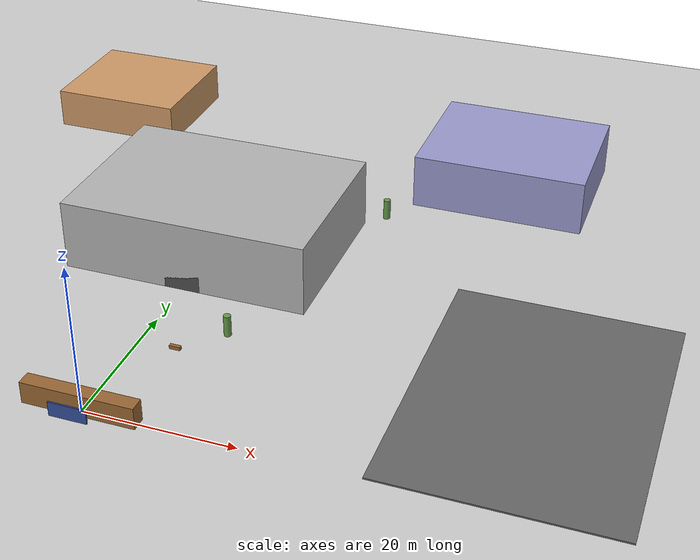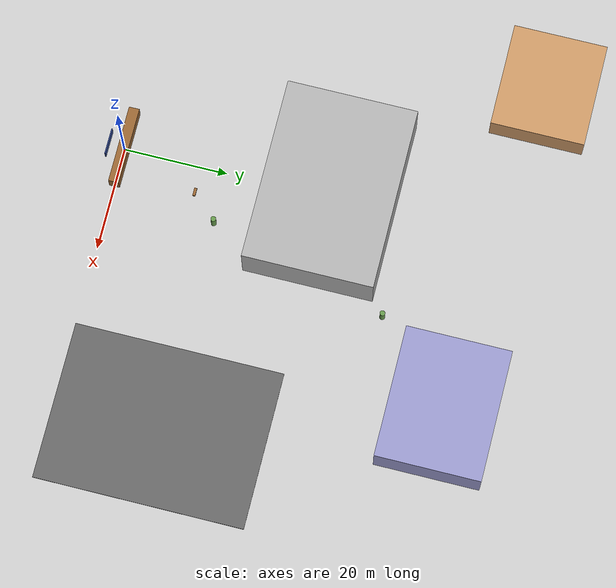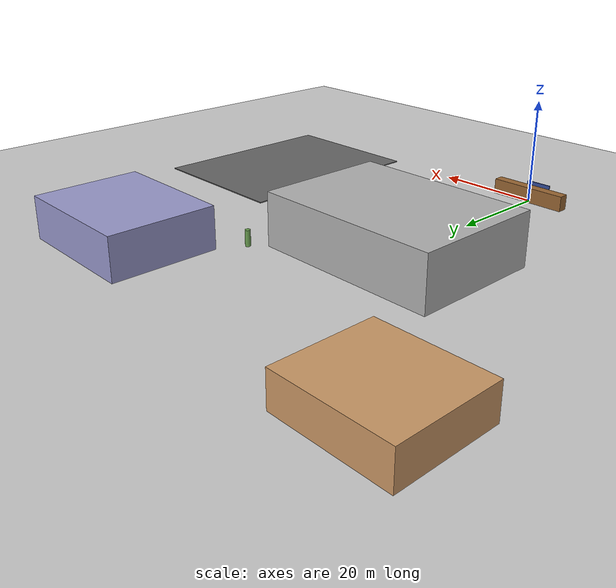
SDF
<?xml version="1.0"?>
<sdf version="1.6">
  <world name="yoto_campus_simple">

    <!-- 軽量物理エンジン -->
    <physics type="ode">
      <real_time_update_rate>50.0</real_time_update_rate>
      <max_step_size>0.02</max_step_size>
      <real_time_factor>1</real_time_factor>
      <gravity>0 0 -9.8</gravity>
      <ode>
        <solver>
          <type>quick</type>
          <iters>10</iters>
          <sor>1.3</sor>
        </solver>
        <constraints>
          <cfm>0.01</cfm>
          <erp>0.2</erp>
          <contact_max_correcting_vel>10.0</contact_max_correcting_vel>
          <contact_surface_layer>0.01</contact_surface_layer>
        </constraints>
      </ode>
    </physics>

    <!-- 太陽光 -->
    <include>
      <uri>model://sun</uri>
    </include>

    <!-- 地面（大きめ） -->
    <model name="ground_plane">
      <static>true</static>
      <link name="link">
        <collision name="collision">
          <geometry>
            <plane>
              <normal>0 0 1</normal>
              <size>200 200</size>
            </plane>
          </geometry>
          <surface>
            <friction>
              <ode>
                <mu>100</mu>
                <mu2>50</mu2>
              </ode>
            </friction>
          </surface>
        </collision>
        <visual name="visual">
          <geometry>
            <plane>
              <normal>0 0 1</normal>
              <size>200 200</size>
            </plane>
          </geometry>
          <material>
            <ambient>0.8 0.8 0.8 1</ambient>
            <diffuse>0.8 0.8 0.8 1</diffuse>
          </material>
        </visual>
      </link>
    </model>

    <!-- ========================================
         キャンパス建物（簡易版）
         原点 (0,0) = 正門
         ======================================== -->

    <!-- 正門（原点） -->
    <model name="main_gate">
      <static>true</static>
      <pose>0 0 1.5 0 0 0</pose>
      <link name="link">
        <visual name="visual">
          <geometry>
            <box><size>15 2 3</size></box>
          </geometry>
          <material>
            <ambient>0.6 0.4 0.2 1</ambient>
            <diffuse>0.6 0.4 0.2 1</diffuse>
            <specular>0.1 0.1 0.1 1</specular>
          </material>
        </visual>
        <collision name="collision">
          <geometry>
            <box><size>15 2 3</size></box>
          </geometry>
        </collision>
      </link>
    </model>

    <!-- 正門の看板 -->
    <model name="gate_sign">
      <static>true</static>
      <pose>0 -3 2 0 0 0</pose>
      <link name="link">
        <visual name="visual">
          <geometry>
            <box><size>5 0.2 2</size></box>
          </geometry>
          <material>
            <ambient>0.2 0.3 0.6 1</ambient>
            <diffuse>0.2 0.3 0.6 1</diffuse>
          </material>
        </visual>
      </link>
    </model>

    <!-- 工学部棟（北へ40m） -->
    <model name="engineering_building">
      <static>true</static>
      <pose>0 40 5 0 0 0</pose>
      <link name="link">
        <visual name="visual">
          <geometry>
            <box><size>35 25 10</size></box>
          </geometry>
          <material>
            <ambient>0.7 0.7 0.7 1</ambient>
            <diffuse>0.7 0.7 0.7 1</diffuse>
          </material>
        </visual>
        <collision name="collision">
          <geometry>
            <box><size>35 25 10</size></box>
          </geometry>
        </collision>
      </link>
    </model>

    <!-- 工学部の入口（凹み） -->
    <model name="engineering_entrance">
      <static>true</static>
      <pose>0 28 1.5 0 0 0</pose>
      <link name="link">
        <visual name="visual">
          <geometry>
            <box><size>5 1 3</size></box>
          </geometry>
          <material>
            <ambient>0.3 0.3 0.3 1</ambient>
            <diffuse>0.3 0.3 0.3 1</diffuse>
          </material>
        </visual>
      </link>
    </model>

    <!-- 図書館（北東へ） -->
    <model name="library">
      <static>true</static>
      <pose>35 70 4 0 0 0</pose>
      <link name="link">
        <visual name="visual">
          <geometry>
            <box><size>25 20 8</size></box>
          </geometry>
          <material>
            <ambient>0.6 0.6 0.8 1</ambient>
            <diffuse>0.6 0.6 0.8 1</diffuse>
          </material>
        </visual>
        <collision name="collision">
          <geometry>
            <box><size>25 20 8</size></box>
          </geometry>
        </collision>
      </link>
    </model>

    <!-- 食堂（北西へ） -->
    <model name="cafeteria">
      <static>true</static>
      <pose>-30 75 3 0 0 0</pose>
      <link name="link">
        <visual name="visual">
          <geometry>
            <box><size>20 18 6</size></box>
          </geometry>
          <material>
            <ambient>0.8 0.6 0.4 1</ambient>
            <diffuse>0.8 0.6 0.4 1</diffuse>
          </material>
        </visual>
        <collision name="collision">
          <geometry>
            <box><size>20 18 6</size></box>
          </geometry>
        </collision>
      </link>
    </model>

    <!-- 駐車場エリア（東へ） -->
    <model name="parking_lot">
      <static>true</static>
      <pose>50 20 0.1 0 0 0</pose>
      <link name="link">
        <visual name="visual">
          <geometry>
            <box><size>30 40 0.2</size></box>
          </geometry>
          <material>
            <ambient>0.4 0.4 0.4 1</ambient>
            <diffuse>0.4 0.4 0.4 1</diffuse>
          </material>
        </visual>
        <collision name="collision">
          <geometry>
            <box><size>30 40 0.2</size></box>
          </geometry>
        </collision>
      </link>
    </model>

    <!-- ========================================
         障害物（木・ベンチ等）
         ======================================== -->

    <model name="tree_1">
      <static>true</static>
      <pose>10 20 1.5 0 0 0</pose>
      <link name="link">
        <visual name="visual">
          <geometry>
            <cylinder><radius>0.5</radius><length>3</length></cylinder>
          </geometry>
          <material>
            <ambient>0.4 0.6 0.3 1</ambient>
            <diffuse>0.4 0.6 0.3 1</diffuse>
          </material>
        </visual>
        <collision name="collision">
          <geometry>
            <cylinder><radius>0.5</radius><length>3</length></cylinder>
          </geometry>
        </collision>
      </link>
    </model>

    <model name="tree_2">
      <static>true</static>
      <pose>-15 30 1.5 0 0 0</pose>
      <link name="link">
        <visual name="visual">
          <geometry>
            <cylinder><radius>0.5</radius><length>3</length></cylinder>
          </geometry>
          <material>
            <ambient>0.4 0.6 0.3 1</ambient>
            <diffuse>0.4 0.6 0.3 1</diffuse>
          </material>
        </visual>
        <collision name="collision">
          <geometry>
            <cylinder><radius>0.5</radius><length>3</length></cylinder>
          </geometry>
        </collision>
      </link>
    </model>

    <model name="tree_3">
      <static>true</static>
      <pose>20 55 1.5 0 0 0</pose>
      <link name="link">
        <visual name="visual">
          <geometry>
            <cylinder><radius>0.5</radius><length>3</length></cylinder>
          </geometry>
          <material>
            <ambient>0.4 0.6 0.3 1</ambient>
            <diffuse>0.4 0.6 0.3 1</diffuse>
          </material>
        </visual>
        <collision name="collision">
          <geometry>
            <cylinder><radius>0.5</radius><length>3</length></cylinder>
          </geometry>
        </collision>
      </link>
    </model>

    <!-- ベンチ 1 -->
    <model name="bench_1">
      <static>true</static>
      <pose>5 15 0.25 0 0 0</pose>
      <link name="link">
        <visual name="visual">
          <geometry>
            <box><size>1.5 0.5 0.5</size></box>
          </geometry>
          <material>
            <ambient>0.6 0.4 0.2 1</ambient>
            <diffuse>0.6 0.4 0.2 1</diffuse>
          </material>
        </visual>
        <collision name="collision">
          <geometry>
            <box><size>1.5 0.5 0.5</size></box>
          </geometry>
        </collision>
      </link>
    </model>

    <!-- ベンチ 2 -->
    <model name="bench_2">
      <static>true</static>
      <pose>-10 50 0.25 0 0 1.57</pose>
      <link name="link">
        <visual name="visual">
          <geometry>
            <box><size>1.5 0.5 0.5</size></box>
          </geometry>
          <material>
            <ambient>0.6 0.4 0.2 1</ambient>
            <diffuse>0.6 0.4 0.2 1</diffuse>
          </material>
        </visual>
        <collision name="collision">
          <geometry>
            <box><size>1.5 0.5 0.5</size></box>
          </geometry>
        </collision>
      </link>
    </model>

    <!-- 環境設定 -->
    <scene>
      <ambient>0.6 0.6 0.6 1.0</ambient>
      <background>0.7 0.8 0.9 1.0</background>
      <shadows>false</shadows>
      <grid>true</grid>
    </scene>

    <!-- カメラ初期位置 -->
    <gui>
      <camera name="user_camera">
        <pose>-50 -50 80 0 0.8 0.785</pose>
      </camera>
    </gui>

  </world>
</sdf>
